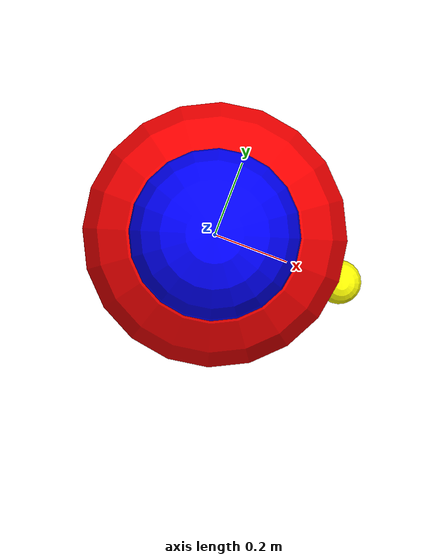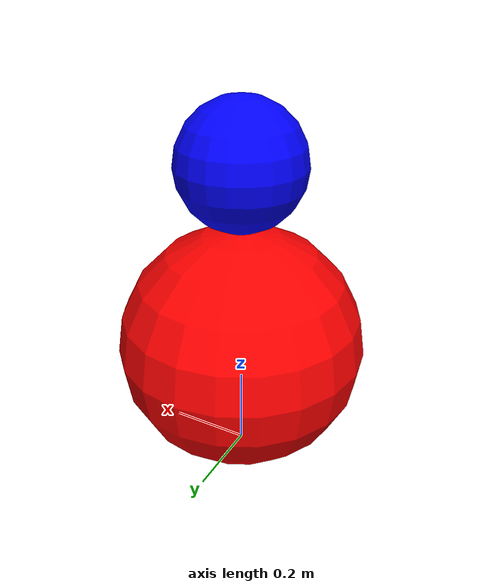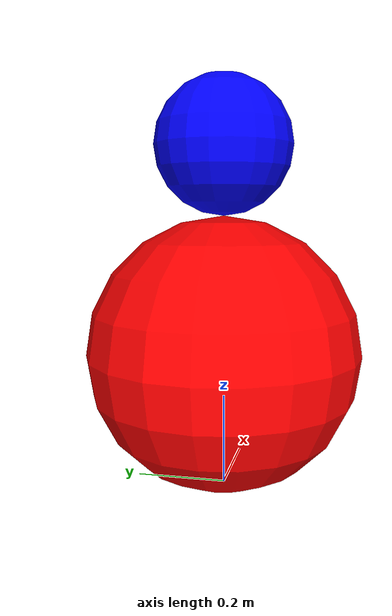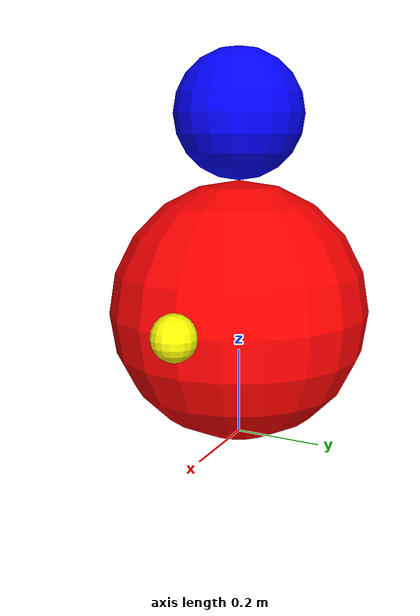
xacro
<?xml version="1.0"?>
<robot xmlns:xacro="http://www.ros.org/wiki/xacro" name="round_bot">

  <!-- Robot properties -->
  <xacro:property name="body_radius" value="0.3"/>
  <xacro:property name="head_radius" value="0.15"/>

  <!-- Materials -->
  <material name="red">
    <color rgba="1 0 0 1"/>
  </material>

  <material name="blue">
    <color rgba="0 0 1 1"/>
  </material>

  <!-- BASE FOOTPRINT (ground contact, z=0) -->
  <link name="base_footprint"/>

  <!-- BASE LINK (sphere center, lifted so bottom touches ground) -->
  <joint name="base_link_joint" type="fixed">
    <parent link="base_footprint"/>
    <child link="base_link"/>
    <origin xyz="0 0 ${body_radius}" rpy="0 0 0"/>
  </joint>

  <link name="base_link"/>

  <!-- BODY SPHERE (red) -->
  <joint name="body_joint" type="fixed">
    <parent link="base_link"/>
    <child link="body"/>
    <origin xyz="0 0 0"/>
  </joint>

  <link name="body">
    <visual>
      <geometry>
        <sphere radius="${body_radius}"/>
      </geometry>
      <material name="red"/>
    </visual>
    <collision>
      <geometry>
        <sphere radius="${body_radius}"/>
      </geometry>
    </collision>
  </link>

  <!-- HEAD SPHERE (blue, sits on top of red body) -->
  <joint name="head_joint" type="fixed">
    <parent link="body"/>
    <child link="head"/>
    <!-- place it so the bottom of the blue sphere touches the top of the red sphere -->
    <origin xyz="0 0 ${body_radius + head_radius}" rpy="0 0 0"/>
  </joint>

  <link name="head">
    <visual>
      <geometry>
        <sphere radius="${head_radius}"/>
      </geometry>
      <material name="blue"/>
    </visual>
    <collision>
      <geometry>
        <sphere radius="${head_radius}"/>
      </geometry>
    </collision>
  </link>

  <!-- Yellow forward marker -->
  <joint name="forward_marker_joint" type="fixed">
    <parent link="base_link"/>
    <child link="forward_marker"/>
    <origin xyz="${body_radius} 0 0" rpy="0 0 0"/> <!-- placed in front along x-axis -->
  </joint>

  <link name="forward_marker">
    <visual>
      <geometry>
        <sphere radius="0.05"/>
      </geometry>
      <material name="yellow">
        <color rgba="1 1 0 1"/>
      </material>
    </visual>
  </link>

</robot>
